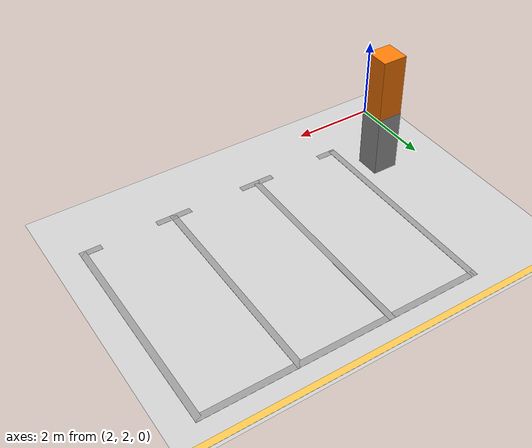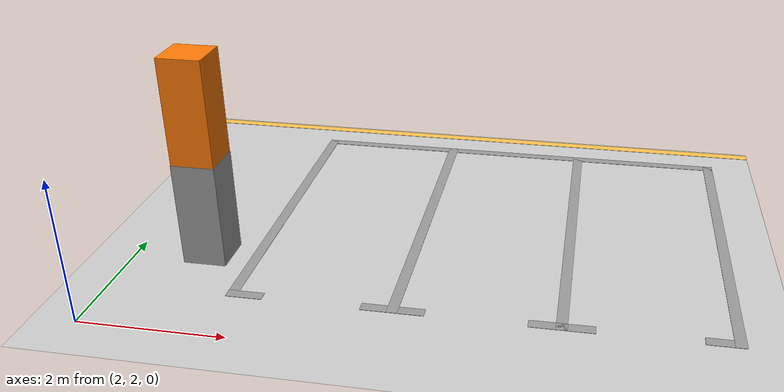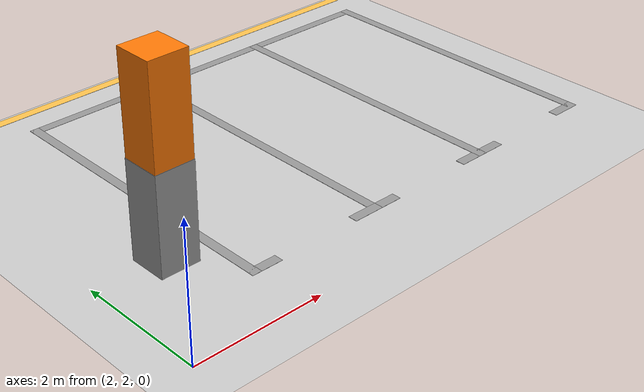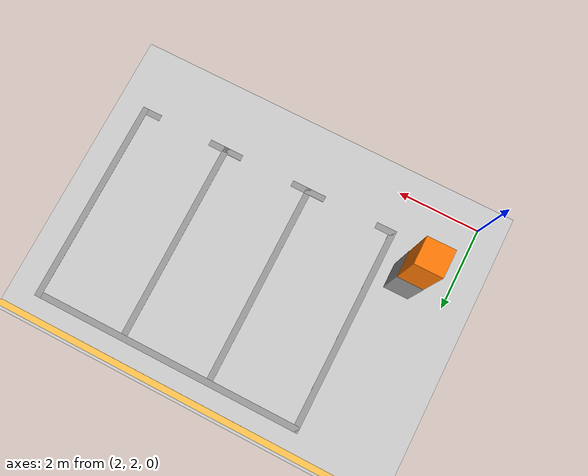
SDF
<sdf version="1.7">
 <world name="default">
  <model name="ground_plane">
   <static>1</static>
   <link name="link">
    <collision name="collision">
     <geometry><plane><normal>0 0 1</normal><size>100 100</size></plane></geometry>
     <surface><friction><ode><mu>100</mu><mu2>50</mu2></ode></friction></surface>
    </collision>
    <visual name="visual">
     <cast_shadows>0</cast_shadows>
     <geometry><plane><normal>0 0 1</normal><size>100 100</size></plane></geometry>
     <material>
      <script><uri>file://media/materials/scripts/gazebo.material</uri><name>Gazebo/Grey</name></script>
     </material>
    </visual>
   </link>
  </model>
  <model name="carport1_2_clone">
   <pose>6.54693 7.15434 0 0 -0 0</pose>
   <link name="Wall_105">
    <collision name="Wall_105_Collision">
     <geometry><box><size>0.61 0.6 1.5</size></box></geometry>
     <pose>0 0 0.75 0 -0 0</pose>
    </collision>
    <visual name="Wall_105_Visual">
     <pose>0 0 0.75 0 -0 0</pose>
     <geometry><box><size>0.61 0.6 1.5</size></box></geometry>
     <material>
      <script><uri>file://media/materials/scripts/gazebo.material</uri><name>Gazebo/Grey</name></script>
      <ambient>1 1 1 1</ambient>
     </material>
     <meta><layer>0</layer></meta>
    </visual>
    <pose>-3.47407 -3.2865 0 0 -0 0</pose>
   </link>
   <link name="Wall_116">
    <collision name="Wall_116_Collision">
     <geometry><box><size>5.1 0.15 0.005</size></box></geometry>
     <pose>0 0 0.0025 0 -0 0</pose>
    </collision>
    <visual name="Wall_116_Visual">
     <pose>0 0 0.0025 0 -0 0</pose>
     <geometry><box><size>5.1 0.15 0.005</size></box></geometry>
     <material>
      <script><uri>file://media/materials/scripts/gazebo.material</uri><name>Gazebo/Grey</name></script>
      <ambient>1 1 1 1</ambient>
     </material>
     <meta><layer>0</layer></meta>
    </visual>
    <pose>-2.82307 -1.7385 0 0 -0 1.5708</pose>
   </link>
   <link name="Wall_124">
    <collision name="Wall_124_Collision">
     <geometry><box><size>5.1 0.15 0.005</size></box></geometry>
     <pose>0 0 0.0025 0 -0 0</pose>
    </collision>
    <visual name="Wall_124_Visual">
     <pose>0 0 0.0025 0 -0 0</pose>
     <geometry><box><size>5.1 0.15 0.005</size></box></geometry>
     <material>
      <script><uri>file://media/materials/scripts/gazebo.material</uri><name>Gazebo/Grey</name></script>
      <ambient>1 1 1 1</ambient>
     </material>
     <meta><layer>0</layer></meta>
    </visual>
    <pose>3.70393 -1.7305 0 0 -0 1.5708</pose>
   </link>
   <link name="Wall_146">
    <collision name="Wall_146_Collision">
     <geometry><box><size>6.67711 0.15 0.005</size></box></geometry>
     <pose>0 0 0.0025 0 -0 0</pose>
    </collision>
    <visual name="Wall_146_Visual">
     <pose>0 0 0.0025 0 -0 0</pose>
     <geometry><box><size>6.67711 0.15 0.005</size></box></geometry>
     <material>
      <script><uri>file://media/materials/scripts/gazebo.material</uri><name>Gazebo/Grey</name></script>
      <ambient>1 1 1 1</ambient>
     </material>
     <meta><layer>0</layer></meta>
    </visual>
    <pose>0.440428 0.7405 0 0 -0 0.001226</pose>
   </link>
   <link name="Wall_168">
    <collision name="Wall_168_Collision">
     <geometry><box><size>5.1 0.15 0.005</size></box></geometry>
     <pose>0 0 0.0025 0 -0 0</pose>
    </collision>
    <visual name="Wall_168_Visual">
     <pose>0 0 0.0025 0 -0 0</pose>
     <geometry><box><size>5.1 0.15 0.005</size></box></geometry>
     <material>
      <script><uri>file://media/materials/scripts/gazebo.material</uri><name>Gazebo/Grey</name></script>
      <ambient>1 1 1 1</ambient>
     </material>
     <meta><layer>0</layer></meta>
    </visual>
    <pose>-0.64827 -1.73839 0 0 -0 1.57088</pose>
   </link>
   <link name="Wall_173">
    <collision name="Wall_173_Collision">
     <geometry><box><size>5.1 0.15 0.005</size></box></geometry>
     <pose>0 0 0.0025 0 -0 0</pose>
    </collision>
    <visual name="Wall_173_Visual">
     <pose>0 0 0.0025 0 -0 0</pose>
     <geometry><box><size>5.1 0.15 0.005</size></box></geometry>
     <material>
      <script><uri>file://media/materials/scripts/gazebo.material</uri><name>Gazebo/Grey</name></script>
      <ambient>1 1 1 1</ambient>
     </material>
     <meta><layer>0</layer></meta>
    </visual>
    <pose>1.52673 -1.73839 0 0 -0 1.57088</pose>
   </link>
   <link name="Wall_177">
    <collision name="Wall_177_Collision">
     <geometry><box><size>0.6 0.59 3</size></box></geometry>
     <pose>0 0 1.5 0 -0 0</pose>
    </collision>
    <visual name="Wall_177_Visual">
     <pose>0 0 1.5 0 -0 0</pose>
     <geometry><box><size>0.6 0.59 3</size></box></geometry>
     <material>
      <script><uri>file://media/materials/scripts/gazebo.material</uri><name>Gazebo/Grey</name></script>
      <ambient>0.996078 0.47451 0.0196078 1</ambient>
     </material>
     <meta><layer>0</layer></meta>
    </visual>
    <pose>-3.47407 -3.2865 0 0 -0 0</pose>
   </link>
   <link name="Wall_179">
    <collision name="Wall_179_Collision">
     <geometry><box><size>0.5 0.15 0.005</size></box></geometry>
     <pose>0 0 0.0025 0 -0 0</pose>
    </collision>
    <visual name="Wall_179_Visual">
     <pose>0 0 0.0025 0 -0 0</pose>
     <geometry><box><size>0.5 0.15 0.005</size></box></geometry>
     <material>
      <script><uri>file://media/materials/scripts/gazebo.material</uri><name>Gazebo/Grey</name></script>
      <ambient>1 1 1 1</ambient>
     </material>
     <meta><layer>0</layer></meta>
    </visual>
    <pose>-2.64807 -4.2135 0 0 -0 0</pose>
   </link>
   <link name="Wall_181">
    <collision name="Wall_181_Collision">
     <geometry><box><size>0.5 0.15 0.005</size></box></geometry>
     <pose>0 0 0.0025 0 -0 0</pose>
    </collision>
    <visual name="Wall_181_Visual">
     <pose>0 0 0.0025 0 -0 0</pose>
     <geometry><box><size>0.5 0.15 0.005</size></box></geometry>
     <material>
      <script><uri>file://media/materials/scripts/gazebo.material</uri><name>Gazebo/Grey</name></script>
      <ambient>1 1 1 1</ambient>
     </material>
     <meta><layer>0</layer></meta>
    </visual>
    <pose>-0.823072 -4.2135 0 0 -0 3.14159</pose>
   </link>
   <link name="Wall_183">
    <collision name="Wall_183_Collision">
     <geometry><box><size>0.5 0.15 0.005</size></box></geometry>
     <pose>0 0 0.0025 0 -0 0</pose>
    </collision>
    <visual name="Wall_183_Visual">
     <pose>0 0 0.0025 0 -0 0</pose>
     <geometry><box><size>0.5 0.15 0.005</size></box></geometry>
     <material>
      <script><uri>file://media/materials/scripts/gazebo.material</uri><name>Gazebo/Grey</name></script>
      <ambient>1 1 1 1</ambient>
     </material>
     <meta><layer>0</layer></meta>
    </visual>
    <pose>-0.473072 -4.2135 0 0 -0 0</pose>
   </link>
   <link name="Wall_185">
    <collision name="Wall_185_Collision">
     <geometry><box><size>0.5 0.15 0.005</size></box></geometry>
     <pose>0 0 0.0025 0 -0 0</pose>
    </collision>
    <visual name="Wall_185_Visual">
     <pose>0 0 0.0025 0 -0 0</pose>
     <geometry><box><size>0.5 0.15 0.005</size></box></geometry>
     <material>
      <script><uri>file://media/materials/scripts/gazebo.material</uri><name>Gazebo/Grey</name></script>
      <ambient>1 1 1 1</ambient>
     </material>
     <meta><layer>0</layer></meta>
    </visual>
    <pose>1.35193 -4.2135 0 0 -0 3.14159</pose>
   </link>
   <link name="Wall_187">
    <collision name="Wall_187_Collision">
     <geometry><box><size>0.5 0.15 0.005</size></box></geometry>
     <pose>0 0 0.0025 0 -0 0</pose>
    </collision>
    <visual name="Wall_187_Visual">
     <pose>0 0 0.0025 0 -0 0</pose>
     <geometry><box><size>0.5 0.15 0.005</size></box></geometry>
     <material>
      <script><uri>file://media/materials/scripts/gazebo.material</uri><name>Gazebo/Grey</name></script>
      <ambient>1 1 1 1</ambient>
     </material>
     <meta><layer>0</layer></meta>
    </visual>
    <pose>1.70193 -4.2135 0 0 -0 0</pose>
   </link>
   <link name="Wall_189">
    <collision name="Wall_189_Collision">
     <geometry><box><size>0.5 0.15 0.005</size></box></geometry>
     <pose>0 0 0.0025 0 -0 0</pose>
    </collision>
    <visual name="Wall_189_Visual">
     <pose>0 0 0.0025 0 -0 0</pose>
     <geometry><box><size>0.5 0.15 0.005</size></box></geometry>
     <material>
      <script><uri>file://media/materials/scripts/gazebo.material</uri><name>Gazebo/Grey</name></script>
      <ambient>1 1 1 1</ambient>
     </material>
     <meta><layer>0</layer></meta>
    </visual>
    <pose>3.52893 -4.2055 0 0 -0 3.14159</pose>
   </link>
   <static>1</static>
  </model>
  <model name="ground_yellow_clone_3">
   <pose>2.44023 10.8509 0 0 -0 0</pose>
   <link name="Wall_226">
    <collision name="Wall_226_Collision">
     <geometry><box><size>50 0.15 0.005</size></box></geometry>
     <pose>0 0 0.0025 0 -0 0</pose>
    </collision>
    <visual name="Wall_226_Visual">
     <pose>0 0 0.0025 0 -0 0</pose>
     <geometry><box><size>50 0.15 0.005</size></box></geometry>
     <material>
      <script><uri>file://media/materials/scripts/gazebo.material</uri><name>Gazebo/Grey</name></script>
      <ambient>1 0.764706 0.305882 1</ambient>
     </material>
     <meta><layer>0</layer></meta>
    </visual>
    <pose>1e-06 -2.39116 0 0 -0 0</pose>
   </link>
   <static>1</static>
  </model>
 </world>
</sdf>
